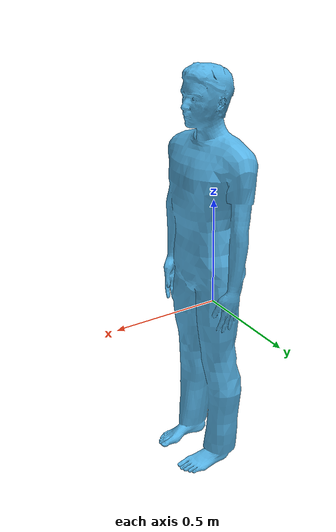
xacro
<?xml version="1.0"?>

<robot xmlns:xacro="http://www.ros.org/wiki/xacro" name="actor">

  <xacro:arg name="actor_name" default=""/>
  <xacro:arg name="tf_prefix" default=""/>
  <xacro:arg name="use_gpu" default="false"/>

  <!-- PLUGINS -->

  <gazebo>
    <plugin name="$(arg actor_name)_object_controller" filename="libgazebo_ros_planar_move.so">
      <alwaysOn>true</alwaysOn>
      <updateRate>20.0</updateRate>
      <robotNamespace>$(arg actor_name)</robotNamespace>
       <commandTopic>cmd_vel</commandTopic>
      <odometryTopic>odom</odometryTopic>
      <odometryFrame>$(arg tf_prefix)/odom</odometryFrame>
      <odometryRate>20.0</odometryRate>
      <robotBaseFrame>$(arg tf_prefix)/base_footprint</robotBaseFrame>
      <enableYAxis>1</enableYAxis>
      <robotSimType>gazebo_ros_control/DefaultRobotHWSim</robotSimType>
      <legacyModeNS>true</legacyModeNS>
    </plugin>
  </gazebo>

  <!-- CREATE LINKS -->

  <link name="$(arg tf_prefix)/base_footprint"/>

  <link name="$(arg tf_prefix)/base_link">
    <inertial>
      <origin xyz="0.0 0.0 -0.85" rpy="0 0 0"/>
      <mass value="80"/>
      <inertia ixx="22.85" ixy="0.0" ixz="0.0" iyy="22.85" iyz="0.0" izz="2.5"/>
    </inertial>

    <collision name="$(arg actor_name)_collision">
      <origin xyz="0 0 0.0" rpy="0.0 0 0"/>
      <geometry>
        <box size="0.5 0.5 1.8"/>
      </geometry>
    </collision>

    <visual name="$(arg actor_name)_visual">
      <origin xyz="0 0 -0.9" rpy="0.0 0 1.54"/>
      <geometry>
        <mesh filename="model://person_standing/meshes/standing.dae"/>
      </geometry>
    </visual>

  </link>

  <gazebo reference="$(arg tf_prefix)/base_link">
    <selfCollide>false</selfCollide>
    <mu1>0.02</mu1>
    <mu2>0.02</mu2>
  </gazebo>

  <link name="$(arg tf_prefix)/hokuyo"/>

  <!-- CREATE JOINTS -->

  <!-- For odometry -->
  <joint name="$(arg tf_prefix)/base_footprint_to_base_link" type="fixed">
    <parent link="$(arg tf_prefix)/base_footprint"/>
    <child  link="$(arg tf_prefix)/base_link"/>
    <origin xyz="0 0 0.09" rpy="0 0 0"/>
  </joint>

  <joint name="$(arg tf_prefix)/base_link_to_hokuyo" type="fixed">
    <parent link="$(arg tf_prefix)/base_link"/>
    <child link="$(arg tf_prefix)/hokuyo"/>
    <axis xyz="0 1 0" />
    <origin xyz="0.27 0 -0.85" rpy="0 0 0"/>
  </joint>

  <!-- CREATE SENSORS -->

  <gazebo reference="$(arg tf_prefix)/hokuyo">

  <xacro:unless value="$(arg use_gpu)">
    <sensor name="$(arg actor_name)_hokuyo_sensor" type="ray">
      <pose>0 0 0 0 0 0</pose>
      <visualize>false</visualize>
      <update_rate>40</update_rate>
      <always_on>1</always_on>
      <ray>
        <scan>
          <horizontal>
            <samples>180</samples>
            <resolution>1</resolution>
            <min_angle>-1.570796</min_angle>
            <max_angle>1.570796</max_angle>
          </horizontal>
        </scan>
        <range>
          <min>0.1</min>
          <max>50.0</max>
          <resolution>0.01</resolution>
        </range>
      </ray>
      <plugin name="$(arg actor_name)_hokuyo_node" filename="libgazebo_ros_laser.so">
        <topicName>scan</topicName>
        <frameName>hokuyo</frameName>
      </plugin>
    </sensor>
  </xacro:unless>

  <xacro:if value="$(arg use_gpu)">
      <sensor name="$(arg actor_name)_hokuyo_sensor" type="gpu_ray">
      <pose>0 0 0 0 0 0</pose>
      <visualize>false</visualize>
      <update_rate>40</update_rate>
      <always_on>1</always_on>
      <ray>
        <scan>
          <horizontal>
            <samples>180</samples>
            <resolution>1</resolution>
            <min_angle>-1.570796</min_angle>
            <max_angle>1.570796</max_angle>
          </horizontal>
        </scan>
        <range>
          <min>0.1</min>
          <max>50.0</max>
          <resolution>0.01</resolution>
        </range>
      </ray>
      <plugin name="$(arg actor_name)_hokuyo_node" filename="libgazebo_ros_gpu_laser.so">
        <topicName>scan</topicName>
        <frameName>hokuyo</frameName>
      </plugin>
    </sensor>
  </xacro:if>
  </gazebo>

</robot>
